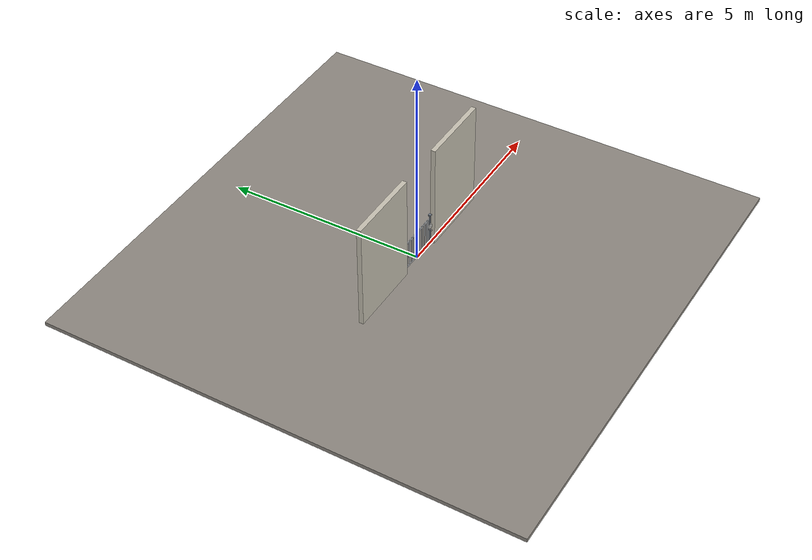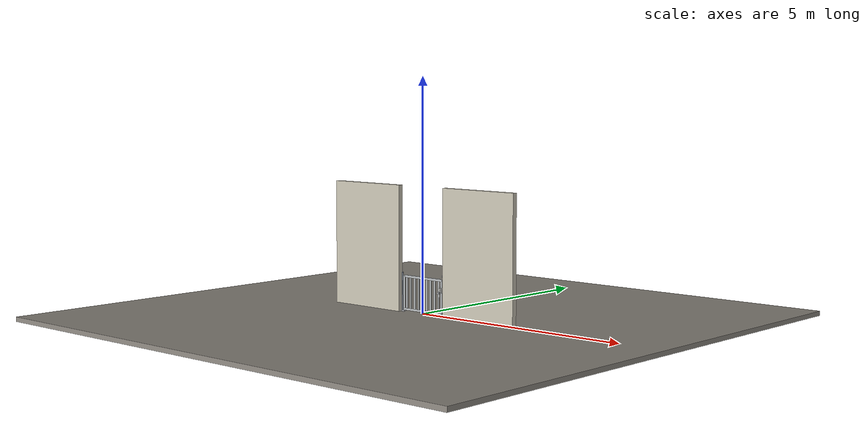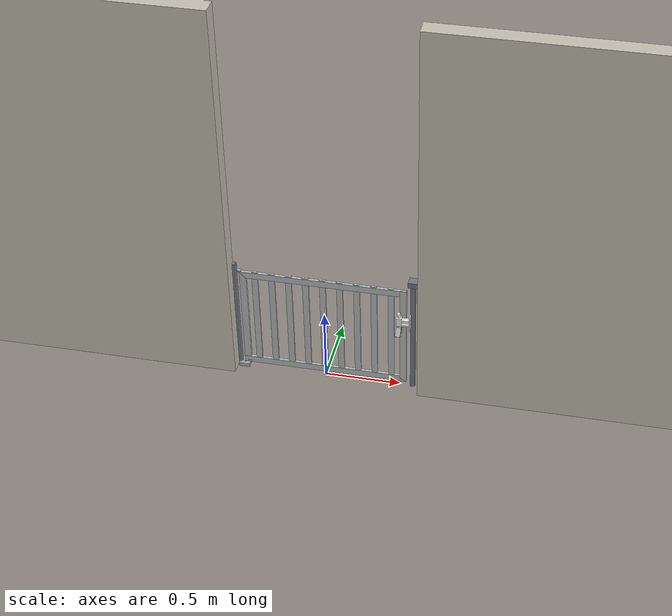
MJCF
<?xml version="1.0" ?>
<mujoco model="db0332_baby_gate_full">
  <compiler angle="radian" meshdir="../../hardware" texturedir="../../textures" autolimits="true" inertiafromgeom="false"/>
  <option timestep="0.002" integrator="implicitfast" cone="elliptic" impratio="10" noslip_iterations="3">
    <flag multiccd="enable"/>
  </option>
  <size memory="16M"/>
  <default>
    <geom condim="4" solref="0.005 1" solimp="0.95 0.99 0.001"/>
    <joint solreflimit="0.005 1" solimplimit="0.95 0.99 0.001"/>
    <tendon solreflimit="0.005 1"/>
    <equality solref="0.002 1"/>
  </default>
  <visual>
    <headlight ambient="0.4 0.4 0.4" diffuse="0.7 0.7 0.7" specular="0.2 0.2 0.2"/>
    <quality shadowsize="4096"/>
    <map znear="0.01" zfar="60"/>
  </visual>
  <asset>
    <material name="mat_floor" rgba="0.55 0.53 0.5 1" specular="0.2" shininess="0.15" reflectance="0"/>
    <material name="mat_wall" rgba="0.78 0.76 0.7 1" specular="0.2" shininess="0.1" reflectance="0"/>
    <material name="mat_leaf" rgba="0.72 0.73 0.74 1" specular="0.23" shininess="0.63" reflectance="0.02"/>
    <material name="mat_hinge" rgba="0.65 0.66 0.68 1" specular="0.74" shininess="0.5" reflectance="0.36"/>
    <material name="mat_op_pvc" rgba="0.92 0.92 0.9 1" specular="0.2" shininess="0.6" reflectance="0"/>
    <material name="mat_keeper" rgba="0.65 0.66 0.68 1" specular="0.74" shininess="0.5" reflectance="0.36"/>
    <material name="mat_frame" rgba="0.45 0.48 0.52 1" specular="0.32" shininess="0.6" reflectance="0.08"/>
    <texture name="skybox" type="skybox" builtin="gradient" rgb1="0.6 0.7 0.85" rgb2="0.9 0.92 0.95" width="256" height="256"/>
  </asset>
  <worldbody>
    <light name="sun" pos="1.5 -2.5 4" dir="-0.3 0.5 -0.8" directional="true" diffuse="0.8 0.8 0.8" specular="0.3 0.3 0.3" castshadow="true"/>
    <light name="fill" pos="-1.5 2.5 3" dir="0.3 -0.5 -0.7" directional="true" diffuse="0.35 0.35 0.4" castshadow="false"/>
    <camera name="robot_view" pos="0 -1.9155 0.91" xyaxes="1 0 0 0 0.26963 0.962964" fovy="52"/>
    <camera name="far_view" pos="0 1.8345 0.91" xyaxes="-1 0 0 0 -0.26963 0.962964" fovy="52"/>
    <camera name="iso" pos="1.425 -1.6155 1.21" xyaxes="0.741536 0.670913 0 -0.242917 0.268487 0.932151" fovy="46"/>
    <camera name="detail_handle" pos="0.684 -0.845 0.895" xyaxes="0.97561 0.219512 0 -0.070934 0.315262 0.94635" fovy="38"/>
    <geom name="floor" type="box" size="6 6 0.05" pos="0 0 -0.05" material="mat_floor" group="0" contype="1" conaffinity="1" friction="0.8 0.005 0.0001" density="2400"/>
    <geom name="wall_left" type="box" size="0.949 0.0575 1.35" pos="-1.551 -0.0405 1.35" material="mat_wall" group="0" contype="1" conaffinity="1" friction="0.6 0.005 0.0001" density="800"/>
    <geom name="wall_right" type="box" size="0.934 0.0575 1.35" pos="1.566 -0.0405 1.35" material="mat_wall" group="0" contype="1" conaffinity="1" friction="0.6 0.005 0.0001" density="800"/>
    <geom name="pivot_bottom_socket" type="box" size="0.035 0.035 0.019" pos="-0.556 0 0.009" material="mat_hinge" group="1" contype="0" conaffinity="0" density="7850"/>
    <geom name="leaf_pin_housing" type="box" size="0.018 0.016 0.03" pos="0.504 -0.045 0.565" material="mat_op_pvc" group="1" contype="0" conaffinity="0" density="1800"/>
    <geom name="leaf_pin_bracket" type="box" size="0.028 0.016 0.01" pos="0.55 -0.045 0.574" material="mat_op_pvc" group="1" contype="0" conaffinity="0" density="1800"/>
    <geom name="leaf_pin_bracket_2" type="box" size="0.028 0.016 0.006" pos="0.55 -0.045 0.544" material="mat_op_pvc" group="1" contype="0" conaffinity="0" density="1800"/>
    <geom name="leaf_pin_post_plate" type="box" size="0.003 0.022 0.05" pos="0.575 -0.045 0.56" material="mat_op_pvc" group="1" contype="0" conaffinity="0" density="1800"/>
    <geom name="post_hinge" type="cylinder" size="0.015 0.415" pos="-0.587 0 0.415" material="mat_frame" group="0" contype="1" conaffinity="1" friction="0.6 0.005 0.0001" density="800"/>
    <geom name="post_hinge_cap" type="sphere" size="0.015" pos="-0.587 0 0.83" material="mat_frame" group="1" contype="0" conaffinity="0" density="800"/>
    <geom name="post_latch" type="box" size="0.015 0.015 0.415" pos="0.587 0 0.415" material="mat_frame" group="0" contype="1" conaffinity="1" friction="0.6 0.005 0.0001" density="800"/>
    <geom name="post_latch_cap" type="box" size="0.03 0.03 0.02" pos="0.587 0 0.85" material="mat_frame" group="1" contype="0" conaffinity="0" density="800"/>
    <geom name="leaf_pin_post_plate_strap_0" type="box" size="0.005 0.0045 0.04" pos="0.575 -0.019 0.56" material="mat_op_pvc" group="1" contype="0" conaffinity="0" density="7850"/>
    <site name="approach_point" pos="0 -1.5 0" quat="1 0 0 0" size="0.05" rgba="0.2 0.9 0.2 0.5" group="4"/>
    <site name="goal_point" pos="0 1.5 0" quat="1 0 0 0" size="0.05" rgba="0.2 0.9 0.2 0.5" group="4"/>
    <site name="door_plane_center" pos="0 0 0.385" quat="1 0 0 0" size="0.02" rgba="0.2 0.9 0.2 0.5" group="4"/>
    <body name="leaf" pos="-0.572 0 0">
      <inertial pos="0.579538 -0.001826 0.408231" mass="11.076332" quat="0.708172 -0.705906 -0.006289 -0.012255" diaginertia="0.513515896 1.192398061 1.702883166"/>
      <joint name="leaf_hinge" type="hinge" axis="0 0 1" pos="0.016 0 0" limited="true" range="-1.570796 1.570796" damping="0.248312" frictionloss="0.229109" armature="0.02"/>
      <geom name="leaf_slab_col" type="box" size="0.55 0.01 0.375" pos="0.566 0 0.405" material="mat_leaf" group="3" contype="1" conaffinity="1" rgba="0.8 0.3 0.3 0.25" friction="0.4 0.005 0.0001" density="1"/>
      <geom name="leaf_rail_b" type="box" size="0.55 0.01 0.0225" pos="0.566 0 0.0525" material="mat_leaf" group="1" contype="0" conaffinity="0" density="1"/>
      <geom name="leaf_rail_t" type="box" size="0.55 0.01 0.0225" pos="0.566 0 0.7575" material="mat_leaf" group="1" contype="0" conaffinity="0" density="1"/>
      <geom name="leaf_stile_h" type="box" size="0.0225 0.01 0.375" pos="0.0385 0 0.405" material="mat_leaf" group="1" contype="0" conaffinity="0" density="1"/>
      <geom name="leaf_stile_l" type="box" size="0.0225 0.01 0.375" pos="1.0935 0 0.405" material="mat_leaf" group="1" contype="0" conaffinity="0" density="1"/>
      <geom name="leaf_picket_0" type="box" size="0.02 0.007 0.3615" pos="0.117111 0 0.425" material="mat_leaf" group="1" contype="0" conaffinity="0" density="1"/>
      <geom name="leaf_picket_1" type="box" size="0.02 0.007 0.3615" pos="0.229333 0 0.425" material="mat_leaf" group="1" contype="0" conaffinity="0" density="1"/>
      <geom name="leaf_picket_2" type="box" size="0.02 0.007 0.3615" pos="0.341556 0 0.425" material="mat_leaf" group="1" contype="0" conaffinity="0" density="1"/>
      <geom name="leaf_picket_3" type="box" size="0.02 0.007 0.3615" pos="0.453778 0 0.425" material="mat_leaf" group="1" contype="0" conaffinity="0" density="1"/>
      <geom name="leaf_picket_4" type="box" size="0.02 0.007 0.3615" pos="0.566 0 0.425" material="mat_leaf" group="1" contype="0" conaffinity="0" density="1"/>
      <geom name="leaf_picket_5" type="box" size="0.02 0.007 0.3615" pos="0.678222 0 0.425" material="mat_leaf" group="1" contype="0" conaffinity="0" density="1"/>
      <geom name="leaf_picket_6" type="box" size="0.02 0.007 0.3615" pos="0.790444 0 0.425" material="mat_leaf" group="1" contype="0" conaffinity="0" density="1"/>
      <geom name="leaf_picket_7" type="box" size="0.02 0.007 0.3615" pos="0.902667 0 0.425" material="mat_leaf" group="1" contype="0" conaffinity="0" density="1"/>
      <geom name="leaf_picket_8" type="box" size="0.02 0.007 0.3615" pos="1.014889 0 0.425" material="mat_leaf" group="1" contype="0" conaffinity="0" density="1"/>
      <geom name="pivot_bottom" type="cylinder" size="0.014 0.004" pos="0.016 0 0.025" material="mat_hinge" group="1" contype="0" conaffinity="0" density="7850"/>
      <geom name="pivot_top" type="cylinder" size="0.014 0.004" pos="0.016 0 0.784" material="mat_hinge" group="1" contype="0" conaffinity="0" density="7850"/>
      <geom name="leaf_cup_n" type="box" size="0.016 0.004 0.02" pos="1.076 -0.057 0.505" material="mat_keeper" group="0" contype="1" conaffinity="1" friction="0.6 0.005 0.0001" density="7800"/>
      <geom name="leaf_cup_p" type="box" size="0.016 0.004 0.02" pos="1.076 -0.033 0.505" material="mat_keeper" group="0" contype="1" conaffinity="1" friction="0.6 0.005 0.0001" density="7800"/>
      <geom name="leaf_cup_b" type="box" size="0.016 0.016 0.004" pos="1.076 -0.045 0.481" material="mat_keeper" group="0" contype="1" conaffinity="1" friction="0.6 0.005 0.0001" density="7800"/>
      <geom name="leaf_cup_bracket" type="box" size="0.016 0.0095 0.004" pos="1.076 -0.0195 0.505" material="mat_keeper" group="1" contype="0" conaffinity="0" density="7800"/>
      <geom name="leaf_cup_ramp" type="box" size="0.016 0.0301 0.004" pos="1.076 -0.080844 0.502012" quat="0.355381 -0.934722 0 0" material="mat_keeper" group="0" contype="1" conaffinity="1" friction="0.12 0.005 0.0001" density="7800"/>
      <site name="leaf_edge_mid" pos="1.116 0 0.375" quat="1 0 0 0" size="0.02" rgba="0.2 0.9 0.2 0.5" group="4"/>
    </body>
    <body name="leaf_pin" pos="0.504 -0.045 0.55">
      <inertial pos="0 0 0.037519" mass="0.228168" quat="0.707107 0 0.707107 0" diaginertia="0.000010167 0.000346413 0.000346413"/>
      <joint name="leaf_pin_slide" type="slide" axis="0 0 1" limited="true" range="0 0.05" damping="9.526824" frictionloss="0.25" stiffness="60" springref="-0.016667" armature="0.15"/>
      <geom name="leaf_pin_geom" type="capsule" size="0.006 0.0525" pos="0 0 0.0025" material="mat_op_pvc" group="0" contype="1" conaffinity="1" friction="0.6 0.005 0.0001" density="7850"/>
      <geom name="leaf_pin_knob" type="capsule" size="0.012 0.01" pos="0 0 0.065" material="mat_op_pvc" group="0" contype="1" conaffinity="1" friction="0.6 0.005 0.0001" density="7850"/>
      <site name="leaf_grip_pin" pos="0 0 0.065" quat="1 0 0 0" size="0.012" rgba="0.2 0.9 0.2 0.5" group="4"/>
    </body>
  </worldbody>
  <sensor>
    <jointpos name="leaf_hinge_pos" joint="leaf_hinge"/>
    <jointvel name="leaf_hinge_vel" joint="leaf_hinge"/>
    <jointpos name="leaf_pin_slide_pos" joint="leaf_pin_slide"/>
    <jointvel name="leaf_pin_slide_vel" joint="leaf_pin_slide"/>
  </sensor>
</mujoco>
